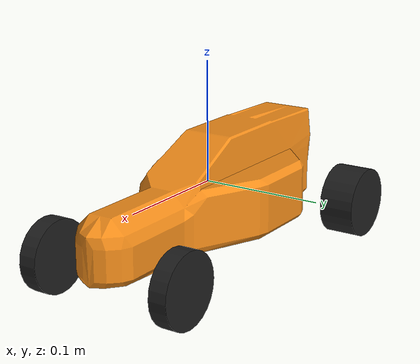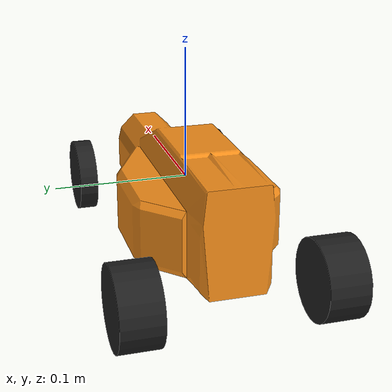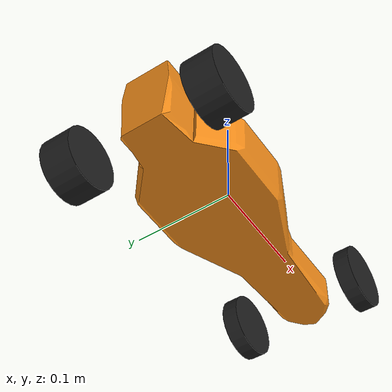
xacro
<?xml version="1.0"?>
<robot name="raider_3197" xmlns:xacro="http://ros.org/wiki/xacro">
	<!-- Constants -->
	<xacro:property name="pi" value="3.1415926535897931"/>

	<!-- Import macros -->

	<xacro:include filename="$(find raider_3197_description)/urdf/wheel_front_joint.xacro" />
	<xacro:include filename="$(find raider_3197_description)/urdf/wheel_front_link.xacro" />
	<xacro:include filename="$(find raider_3197_description)/urdf/wheel_rear_joint.xacro" />
	<xacro:include filename="$(find raider_3197_description)/urdf/wheel_rear_link.xacro" />

	<!-- Import all Gazebo-customization elements, including Gazebo colors -->
	<xacro:include filename="$(find raider_3197_description)/urdf/raider_3197.gazebo" />
	<!-- Import Rviz colors -->
	<xacro:include filename="$(find raider_3197_description)/urdf/materials.xacro" />

	<!-- Used for fixing robot to Gazebo 'base_link' -->
	<link name="world"/>

	<joint name="fixed" type="floating">
		<parent link="world"/>
		<child link="base_link"/>
	</joint>

	<!-- Base Link -->
	<link name="base_link">
		<inertial>
			<mass value="1.0" />
			<inertia ixx="0.004167" iyy="0.011042" izz="0.01354" ixy="0.0" ixz="0.0" iyz="0.0" />
		</inertial>

		<collision name='collision_base_link'>
			<geometry>
				<box size="0.315 0.12 0.08"/>
			</geometry>
		</collision>

		<visual name='visual_base_link'>
			<origin xyz="0 0 -0.04" rpy="0 0 0"/>
			<geometry>
				<mesh filename="package://raider_3197_description/meshes/raider_3197_shell.stl" scale="0.01 0.01 0.01"/>
			</geometry>
			<material name="orange"/>
		</visual>
	</link>

	<xacro:wheel_front_joint suffix="wheel_front_left" parent="base_link" xyz="0.1225 0.06 -0.0375" rpy="${pi/2} ${pi/2} 0" />
	<xacro:wheel_front_link suffix="wheel_front_left" />
	<xacro:wheel_front_joint suffix="wheel_front_right" parent="base_link" xyz="0.1225 -0.06 -0.0375" rpy="${pi/2} ${pi/2} 0" />
	<xacro:wheel_front_link suffix="wheel_front_right" />

	<xacro:wheel_rear_joint suffix="wheel_rear_left" parent="base_link" xyz="-0.1225 0.07 -0.0375" rpy="${pi/2} ${pi/2} 0" />
	<xacro:wheel_rear_link suffix="wheel_rear_left" />
	<xacro:wheel_rear_joint suffix="wheel_rear_right" parent="base_link" xyz="-0.1225 -0.07 -0.0375" rpy="${pi/2} ${pi/2} 0" />
	<xacro:wheel_rear_link suffix="wheel_rear_right" />
</robot>

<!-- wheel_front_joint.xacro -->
<robot xmlns:xacro="http://ros.org/wiki/xacro">
	<xacro:include filename="$(find raider_3197_description)/urdf/axle_joint.xacro" />
	<xacro:include filename="$(find raider_3197_description)/urdf/suspension_joint.xacro" />

	<xacro:macro name="wheel_front_joint" params="suffix parent xyz rpy">
		<xacro:suspension_joint suffix="${suffix}_axle" parent="${parent}" xyz="${xyz}" rpy="0 0 0" />

		<link name="link_${suffix}_axle">
			<inertial>
				<mass value="0.025" />
				<inertia ixx="5.8083e-4" ixy="0" ixz="0" iyy="3.0833e-5" iyz="0" izz="5.9083e-4" />
			</inertial>
		</link>

		<xacro:axle_joint suffix="${suffix}" parent="link_${suffix}_axle" xyz="0 0 0" rpy="${rpy}" />
	</xacro:macro>
</robot>

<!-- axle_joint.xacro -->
<robot xmlns:xacro="http://ros.org/wiki/xacro">
	<xacro:macro name="axle_joint" params="suffix parent xyz rpy">
		<joint name="joint_${suffix}" type="continuous">
			<parent link="${parent}"/>
			<child link="link_${suffix}"/>
			<origin xyz="${xyz}" rpy="${rpy}"/>
			<axis xyz="0 0 1"/>
			<limit effort="1000" velocity="1000"/>
			<dynamics damping="0.0" friction="0.2"/>
		</joint>
	</xacro:macro>
</robot>

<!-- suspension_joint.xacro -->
<robot xmlns:xacro="http://ros.org/wiki/xacro">
	<xacro:macro name="suspension_joint" params="suffix parent xyz rpy">
		<joint name="joint_${suffix}" type="prismatic">
			<parent link="${parent}"/>
			<child link="link_${suffix}"/>
			<origin xyz="${xyz}" rpy="${rpy}"/>
			<axis xyz="0 0 1"/>
			<limit effort="1000" velocity="1000" lower="0.0" upper="0.05"/>
			<dynamics damping="2.0" friction="0.0" />
		</joint>

		<gazebo reference="joint_${suffix}">
			<implicitSpringDamper>true</implicitSpringDamper>
			<springStiffness>300</springStiffness>
			<springReference>0.0</springReference>
		</gazebo>
	</xacro:macro>
</robot>

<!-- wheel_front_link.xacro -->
<robot xmlns:xacro="http://ros.org/wiki/xacro">
	<xacro:macro name="wheel_front_link" params="suffix">

		<link name="link_${suffix}">
			<inertial name='inertial_${suffix}'>>
				<origin xyz="0 0 0" rpy="0 0 0"/>
				<mass value="0.1" />
				<inertia ixx="0.000026" iyy="0.000026" izz="0.0015" ixy="0.0" ixz="0.0" iyz="0.0" />
			</inertial>

			<collision name='collision_${suffix}'>
				<origin xyz="0 0 0" rpy="0 0 0"/>
				<geometry>
					<cylinder radius="0.03" length="0.015"/>
				</geometry>
			</collision>

			<visual name="visual_${suffix}">
				<origin xyz="0 0 0" rpy="0 0 0"/>
				<geometry>
					<cylinder radius="0.03" length="0.015"/>
				</geometry>
				<material name="black"/>
			</visual>
		</link>

		<gazebo reference="link_${suffix}">
			<mu1>0.2</mu1>
			<mu2>0.2</mu2>
			<material>Gazebo/Black</material>
		</gazebo>
	</xacro:macro>
</robot>

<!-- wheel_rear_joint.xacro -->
<robot xmlns:xacro="http://ros.org/wiki/xacro">
	<xacro:include filename="$(find raider_3197_description)/urdf/axle_joint.xacro" />
	<xacro:include filename="$(find raider_3197_description)/urdf/suspension_joint.xacro" />

	<xacro:macro name="wheel_rear_joint" params="suffix parent xyz rpy">
		<xacro:suspension_joint suffix="${suffix}_axle" parent="${parent}" xyz="${xyz}" rpy="0 0 0" />

		<link name="link_${suffix}_axle">
			<inertial>
				<mass value="0.025" />
				<inertia ixx="5.8083e-4" ixy="0" ixz="0" iyy="3.0833e-5" iyz="0" izz="5.9083e-4" />
			</inertial>
		</link>

		<xacro:axle_joint suffix="${suffix}" parent="link_${suffix}_axle" xyz="0 0 0" rpy="${rpy}" />

		<transmission name="trans_${suffix}">
			<type>transmission_interface/SimpleTransmission</type>
			<joint name="joint_${suffix}">
				<hardwareInterface>hardware_interface/EffortJointInterface</hardwareInterface>
			</joint>
			<actuator name="motor_${suffix}">
				<mechanicalReduction>1</mechanicalReduction>
			</actuator>
		</transmission>
	</xacro:macro>
</robot>

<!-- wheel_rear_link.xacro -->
<robot xmlns:xacro="http://ros.org/wiki/xacro">
	<xacro:macro name="wheel_rear_link" params="suffix">

		<link name="link_${suffix}">
			<inertial name='inertial_${suffix}'>>
				<origin xyz="0 0 0" rpy="0 0 0"/>
				<mass value="0.1" />
				<inertia ixx="0.000026" iyy="0.000026" izz="0.0015" ixy="0.0" ixz="0.0" iyz="0.0" />
			</inertial>

			<collision name='collision_${suffix}'>
				<origin xyz="0 0 0" rpy="0 0 0"/>
				<geometry>
					<cylinder radius="0.03" length="0.03"/>
				</geometry>
			</collision>

			<visual name="visual_${suffix}">
				<origin xyz="0 0 0" rpy="0 0 0"/>
				<geometry>
					<cylinder radius="0.03" length="0.03"/>
				</geometry>
				<material name="black"/>
			</visual>
		</link>

		<gazebo reference="link_${suffix}">
			<mu1>0.2</mu1>
			<mu2>0.2</mu2>
			<material>Gazebo/Black</material>
		</gazebo>
	</xacro:macro>
</robot>
